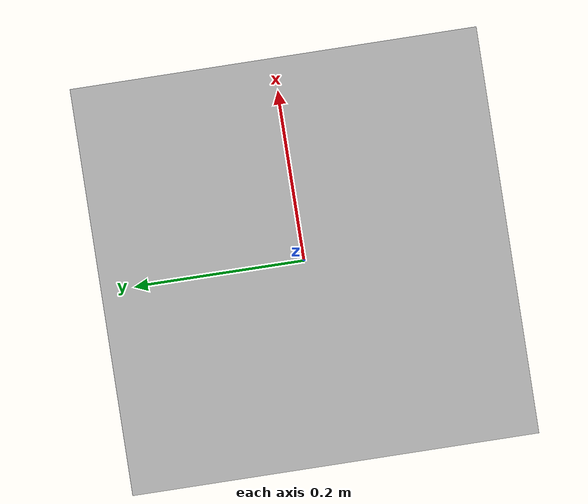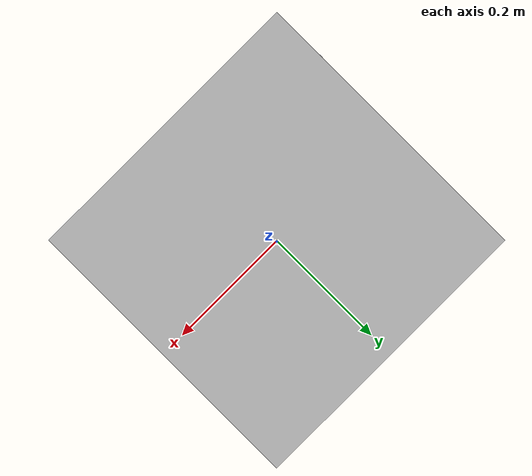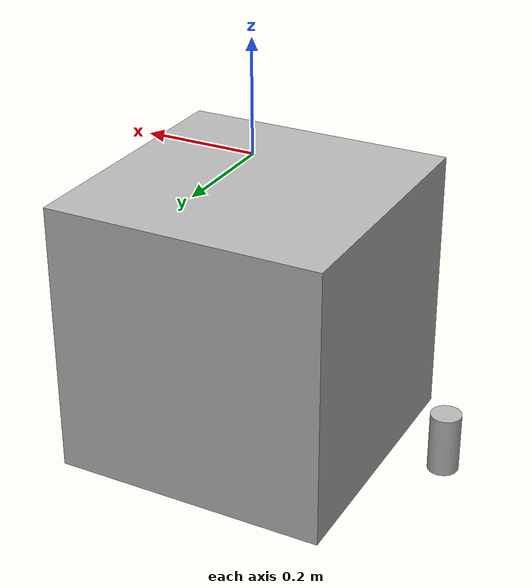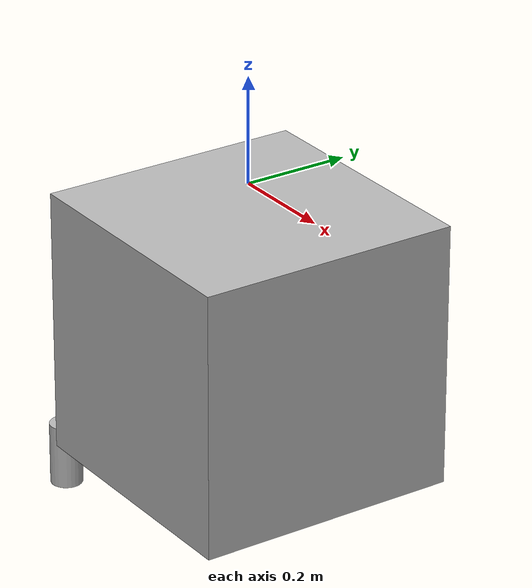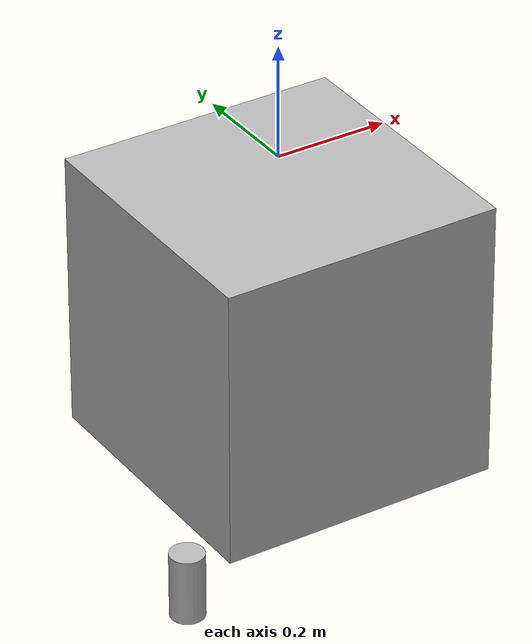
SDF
<?xml version="1.0" ?>
<sdf version="1.8">
  <world name="swimming_pool">

    <plugin filename="gz-sim-physics-system" name="gz::sim::systems::Physics"/>
    <plugin filename="gz-sim-user-commands-system" name="gz::sim::systems::UserCommands"/>
    <plugin filename="gz-sim-scene-broadcaster-system" name="gz::sim::systems::SceneBroadcaster"/>

    <plugin filename="gz-sim-buoyancy-system" name="gz::sim::systems::Buoyancy">
      <graded_buoyancy>
        <default_density>1000</default_density>
        <density_change>
          <above_depth>0</above_depth>
          <density>1</density>
        </density_change>
      </graded_buoyancy>
    </plugin>

    <model name="buoyant_box">
      <static>false</static>

      <pose>0 0 -0.30 0 0 0</pose>

      <link name="box_link">
        <inertial>
          <mass>100</mass>
          <inertia>
            <ixx>4.1666667</ixx>
            <iyy>4.1666667</iyy>
            <izz>4.1666667</izz>
            <ixy>0</ixy>
            <ixz>0</ixz>
            <iyz>0</iyz>
          </inertia>
        </inertial>

        <collision name="collision">
          <geometry>
            <box>
              <size>0.5 0.5 0.5</size>
            </box>
          </geometry>
        </collision>
        <visual name="visual">
          <geometry>
            <box>
              <size>0.5 0.5 0.5</size>
            </box>
          </geometry>
        </visual>
      </link>

      <plugin filename="ignition-gazebo-hydrodynamics-system" name="ignition::gazebo::systems::Hydrodynamics">
        <link_name>box_link</link_name>
        <xU>-10</xU>
        <xUabsU>-3</xUabsU>
        <yV>-10</yV>
        <yVabsV>-3</yVabsV>
        <zW>-10</zW>
        <zWabsW>-3</zWabsW>
      </plugin>

      <link name="thruster">
        <pose>-0.30 -0.20 -0.30   0 0 0</pose>
        <inertial>
          <mass>0.2</mass>
          <inertia>
            <ixx>1e-4</ixx>
            <iyy>1e-4</iyy>
            <izz>1e-4</izz>
            <ixy>0</ixy>
            <ixz>0</ixz>
            <iyz>0</iyz>
          </inertia>
        </inertial>
        <visual name="tube">
          <geometry>
            <cylinder>
              <radius>0.03</radius>
              <length>0.12</length>
            </cylinder>
          </geometry>
        </visual>
      </link>

      <joint name="thruster_joint" type="revolute">
        <parent>box_link</parent>
        <child>thruster</child>
        <axis>
          <xyz>0 0 1</xyz>
        </axis>
      </joint>

      <plugin filename="ignition-gazebo-thruster-system" name="ignition::gazebo::systems::Thruster">
        <topic>/thrust/right</topic>
        <joint_name>thruster_joint</joint_name>
        <fluid_density>1000</fluid_density>
        <propeller_diameter>0.10</propeller_diameter>
        <thrust_coefficient>0.0044</thrust_coefficient>
        <velocity_control>false</velocity_control>
      </plugin>

    </model>

  </world>
</sdf>
